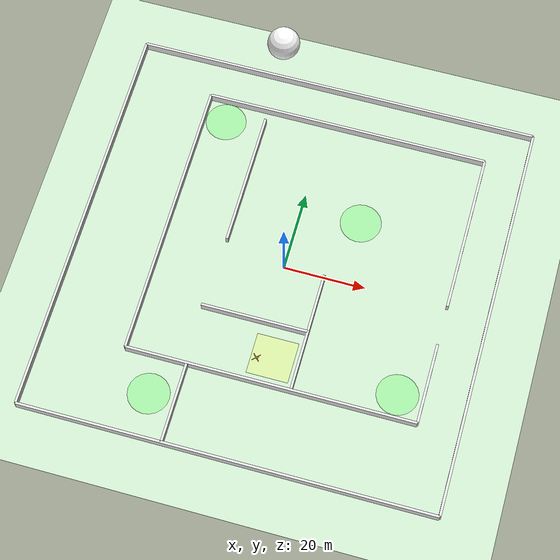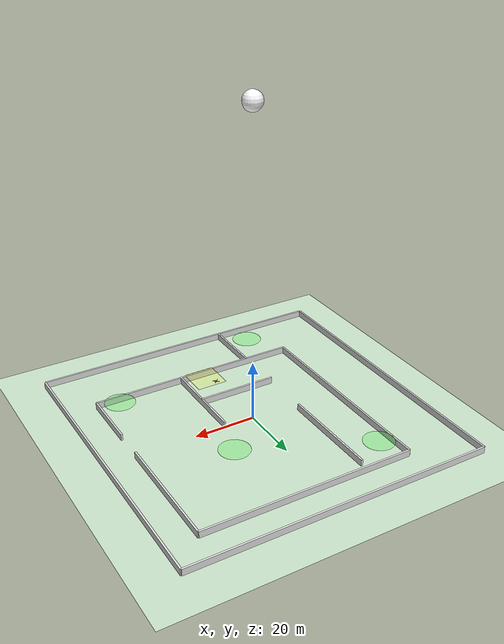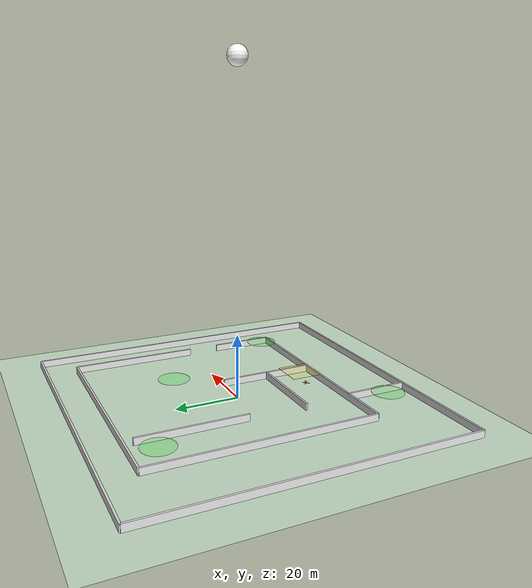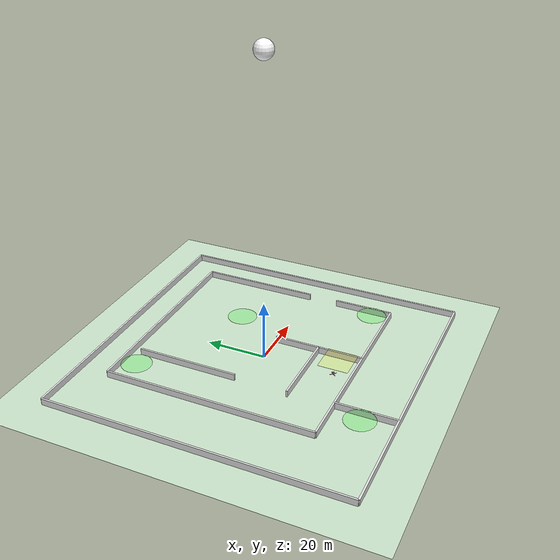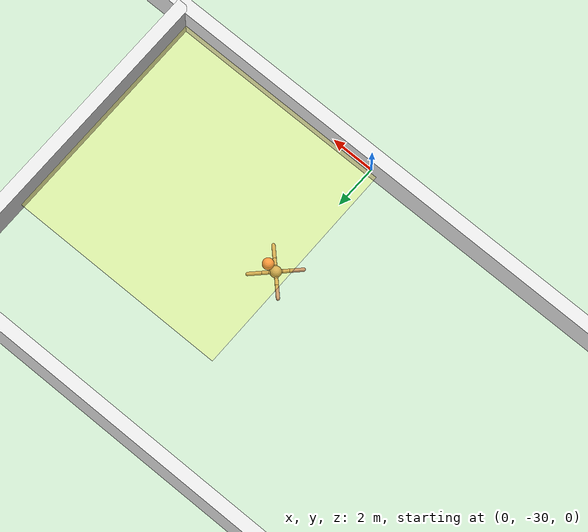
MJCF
<!-- Modified from https://github.com/openai/mlsh from
the "Meta-Learning Shared Hierarchies" paper: https://arxiv.org/abs/1710.09767 -->
<mujoco model="ant">
  <compiler angle="degree" coordinate="local" inertiafromgeom="true" settotalmass="25755"/>
  <option integrator="RK4" timestep="0.005"/>
  <custom>
    <numeric data="0.0 0.0 0.55 1.0 0.0 0.0 0.0 0.0 1.0 0.0 -1.0 0.0 -1.0 0.0 1.0" name="init_qpos"/>
  </custom>
  <default>
    <joint armature="1" damping="1" limited="true"/>
    <geom conaffinity="0" condim="3" density="5.0" friction="1 0.5 0.5" margin="0.01" rgba="0.8 0.6 0.4 1" material="geom"/>
  </default>
  <asset>
    <texture type="skybox" builtin="gradient" rgb1=".1 .12 .15" rgb2="0 0 0" width="100" height="100"/>
    <texture builtin="checker" height="100" name="texplane" rgb1=".1 .1 .1" rgb2=".15 .15 0.15" type="2d" width="100"/>
    <material name="MatPlane" reflectance="0.5" shininess="1" specular="1" texrepeat="50 50" texture="texplane"/>
    <texture builtin="flat" height="1278" mark="cross" markrgb="1 1 1" name="texgeom" random="0.01" rgb1="0.8 0.6 0.4" rgb2="0.8 0.6 0.4" type="cube" width="127"/>
    <material name="geom" texture="texgeom" texuniform="true"/>
  </asset>
  <worldbody>
    <light cutoff="100" diffuse="1 1 1" dir="-0 0 -1.3" directional="true" exponent="1" pos="0 0 1.3" specular=".1 .1 .1"/>
    <geom conaffinity="1" condim="3" material="MatPlane" name="floor" pos="5 5 0" rgba="0.8 0.9 0.8 1" size="70 70 40" type="plane"/>
    <body name="torso" pos="0 -24 0.6">
      <geom name="torso_geom" pos="0 0 0" size="0.25 0.25 0.25" type="ellipsoid"/>
      <geom name="head" density="0.01" rgba="1.0 0.5 0.3 1" pos="0.4 0 0.25" size="0.25" type="sphere"/>
      <joint armature="0" damping="0" limited="false" margin="0.01" name="root" pos="0 0 0" type="free"/>
      <body name="front_left_leg" pos="0 0 0">
        <geom fromto="0.0 0.0 0.0 0.2 0.2 0.0" name="aux_1_geom" size="0.08" type="capsule"/>
        <body name="aux_1" pos="0.2 0.2 0">
          <joint axis="0 0 1" name="hip_1" pos="0.0 0.0 0.0" range="-30 30" type="hinge"/>
          <geom fromto="0.0 0.0 0.0 0.2 0.2 0.0" name="left_leg_geom" size="0.08" type="capsule"/>
          <body pos="0.2 0.2 0">
            <joint axis="-1 1 0" name="ankle_1" pos="0.0 0.0 0.0" range="30 70" type="hinge"/>
            <geom fromto="0.0 0.0 0.0 0.4 0.4 0.0" name="left_ankle_geom" size="0.08" type="capsule"/>
          </body>
        </body>
      </body>
      <body name="front_right_leg" pos="0 0 0">
        <geom fromto="0.0 0.0 0.0 -0.2 0.2 0.0" name="aux_2_geom" size="0.08" type="capsule"/>
        <body name="aux_2" pos="-0.2 0.2 0">
          <joint axis="0 0 1" name="hip_2" pos="0.0 0.0 0.0" range="-30 30" type="hinge"/>
          <geom fromto="0.0 0.0 0.0 -0.2 0.2 0.0" name="right_leg_geom" size="0.08" type="capsule"/>
          <body pos="-0.2 0.2 0">
            <joint axis="1 1 0" name="ankle_2" pos="0.0 0.0 0.0" range="-70 -30" type="hinge"/>
            <geom fromto="0.0 0.0 0.0 -0.4 0.4 0.0" name="right_ankle_geom" size="0.08" type="capsule"/>
          </body>
        </body>
      </body>
      <body name="back_leg" pos="0 0 0">
        <geom fromto="0.0 0.0 0.0 -0.2 -0.2 0.0" name="aux_3_geom" size="0.08" type="capsule"/>
        <body name="aux_3" pos="-0.2 -0.2 0">
          <joint axis="0 0 1" name="hip_3" pos="0.0 0.0 0.0" range="-30 30" type="hinge"/>
          <geom fromto="0.0 0.0 0.0 -0.2 -0.2 0.0" name="back_leg_geom" size="0.08" type="capsule"/>
          <body pos="-0.2 -0.2 0">
            <joint axis="-1 1 0" name="ankle_3" pos="0.0 0.0 0.0" range="-70 -30" type="hinge"/>
            <geom fromto="0.0 0.0 0.0 -0.4 -0.4 0.0" name="third_ankle_geom" size="0.08" type="capsule"/>
          </body>
        </body>
      </body>
      <body name="right_back_leg" pos="0 0 0">
        <geom fromto="0.0 0.0 0.0 0.2 -0.2 0.0" name="aux_4_geom" size="0.08" type="capsule"/>
        <body name="aux_4" pos="0.2 -0.2 0">
          <joint axis="0 0 1" name="hip_4" pos="0.0 0.0 0.0" range="-30 30" type="hinge"/>
          <geom fromto="0.0 0.0 0.0 0.2 -0.2 0.0" name="rightback_leg_geom" size="0.08" type="capsule"/>
          <body pos="0.2 -0.2 0">
            <joint axis="1 1 0" name="ankle_4" pos="0.0 0.0 0.0" range="30 70" type="hinge"/>
            <geom fromto="0.0 0.0 0.0 0.4 -0.4 0.0" name="fourth_ankle_geom" size="0.08" type="capsule"/>
          </body>
        </body>
      </body>
    </body>

    <!-- the outer border -->
    <geom pos="0 50 0" conaffinity="1" rgba="0.9 0.9 0.9 1" size="50 0.3 2" type="box"/>
    <geom pos="0 -50 0" conaffinity="1" rgba="0.9 0.9 0.9 1" size="50 0.3 2" type="box"/>
    <geom pos="-50 0 0" conaffinity="1" rgba="0.9 0.9 0.9 1" size="0.3 50 2" type="box"/>
    <geom pos="50 0 0" conaffinity="1" rgba="0.9 0.9 0.9 1" size="0.3 50 2" type="box"/>

    <geom pos="-15 -40 0" conaffinity="1" rgba="0.9 0.9 0.9 1" size="0.3 10 2" type="box"/>

    <!-- right side of inner maze -->
    <geom pos="5 40 0" conaffinity="1" rgba="0.9 0.9 0.9 1" size="35 0.3 2" type="box"/>
    <geom pos="5 -30 0" conaffinity="1" rgba="0.9 0.9 0.9 1" size="35 0.3 2" type="box"/>

    <geom pos="40 20 0" conaffinity="1" rgba="0.9 0.9 0.9 1" size="0.3 20 2" type="box"/>
    <geom pos="40 -20 0" conaffinity="1" rgba="0.9 0.9 0.9 1" size="0.3 10 2" type="box"/>

    <geom pos="-30 5 0" conaffinity="1" rgba="0.9 0.9 0.9 1" size="0.3 35 2" type="box"/>

    <!-- the top-left box -->
    <geom pos="-15 20 0" conaffinity="1" rgba="0.9 0.9 0.9 1" size="0.3 17 2" type="box"/>

    <geom pos="-3 -15 0" conaffinity="1" rgba="0.9 0.9 0.9 1" size="13 0.3 2" type="box"/>
    <geom pos="10 -15 0" conaffinity="1" rgba="0.9 0.9 0.9 1" size="0.3 15 2" type="box"/>

    <!-- the circular red green blue goals -->
    <geom pos="34 -25 3" conaffinity="1" rgba="0.0 1.0 0.0 0.2" size="5 5 0.05" type="ellipsoid"/>
    <geom pos="-24 33  3" conaffinity="1" rgba="0.0 1.0 0.0 0.2" size="5 5 0.05" type="ellipsoid"/>
    <geom pos="15 15  3" conaffinity="1" rgba="0.0 1.0 0.0 0.2" size="5 5 0.05" type="ellipsoid"/>
    <geom pos="-21 -40  3" conaffinity="1" rgba="0.0 1.0 0.0 0.2" size="5 5 0.05" type="ellipsoid"/>

    <!-- start area -->
    <geom pos="4 -24  3" conaffinity="1" rgba="1.0 1.0 0.0 0.2" size="5 5 0.05" type="box"/>

    <!-- the monster -->
    <!-- The monster seems to be important for balancing out forces and whatnot, so I'm leaving it -->
    <body name="monster" pos="0 0 0">
      <geom pos="0 0 100" material="" name="monster" conaffinity="1" rgba="1 1 1 1" size="3 3 3" type="ellipsoid"/>
    </body>

</worldbody>
<actuator>
  <motor ctrllimited="true" ctrlrange="-1.0 1.0" joint="hip_4" gear="150"/>
  <motor ctrllimited="true" ctrlrange="-1.0 1.0" joint="ankle_4" gear="150"/>
  <motor ctrllimited="true" ctrlrange="-1.0 1.0" joint="hip_1" gear="150"/>
  <motor ctrllimited="true" ctrlrange="-1.0 1.0" joint="ankle_1" gear="150"/>
  <motor ctrllimited="true" ctrlrange="-1.0 1.0" joint="hip_2" gear="150"/>
  <motor ctrllimited="true" ctrlrange="-1.0 1.0" joint="ankle_2" gear="150"/>
  <motor ctrllimited="true" ctrlrange="-1.0 1.0" joint="hip_3" gear="150"/>
  <motor ctrllimited="true" ctrlrange="-1.0 1.0" joint="ankle_3" gear="150"/>
</actuator>
<sensor>
  <jointpos name='pos_hip_1' joint='hip_1' />
  <jointpos name='pos_hip_2' joint='hip_2' />
  <jointpos name='pos_hip_3' joint='hip_3' />
  <jointpos name='pos_hip_4' joint='hip_4' />
  <jointpos name='pos_ankle_1' joint='ankle_1' />
  <jointpos name='pos_ankle_2' joint='ankle_2' />
  <jointpos name='pos_ankle_3' joint='ankle_3' />
  <jointpos name='pos_ankle_4' joint='ankle_4' />

  <jointvel name='vel_hip_1'   joint='hip_1' />
  <jointvel name='vel_hip_2'   joint='hip_2' />
  <jointvel name='vel_hip_3'   joint='hip_3' />
  <jointvel name='vel_hip_4'   joint='hip_4' />
  <jointvel name='vel_ankle_1' joint='ankle_1' />
  <jointvel name='vel_ankle_2' joint='ankle_2' />
  <jointvel name='vel_ankle_3' joint='ankle_3' />
  <jointvel name='vel_ankle_4' joint='ankle_4' />
</sensor>
</mujoco>
